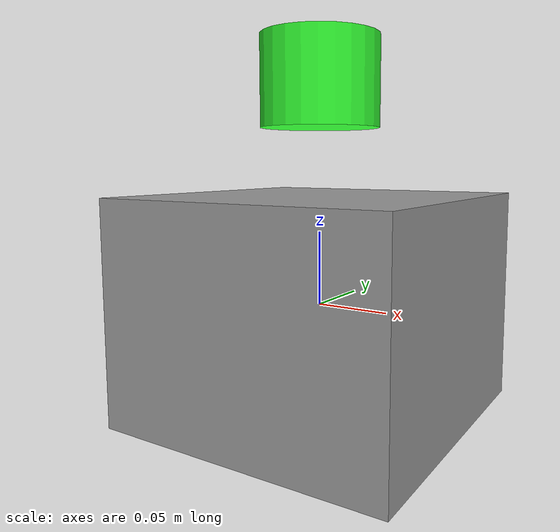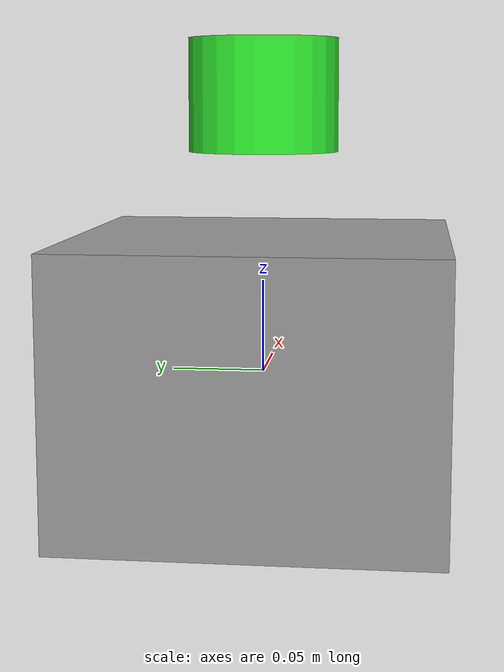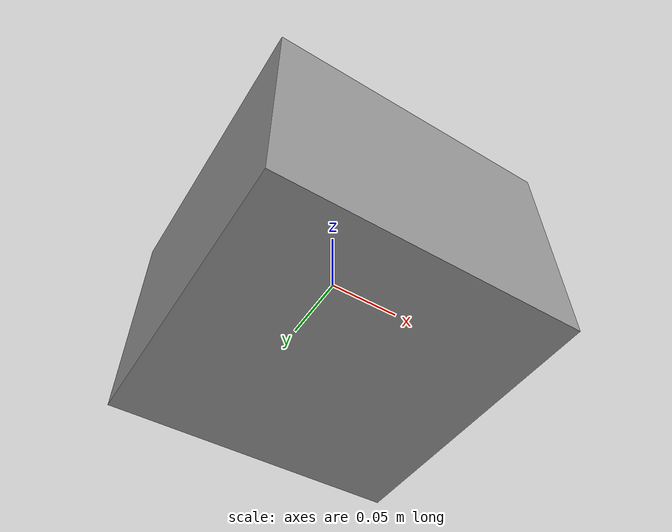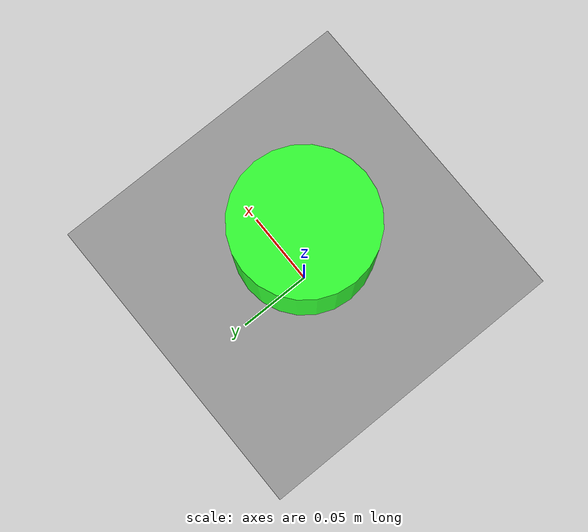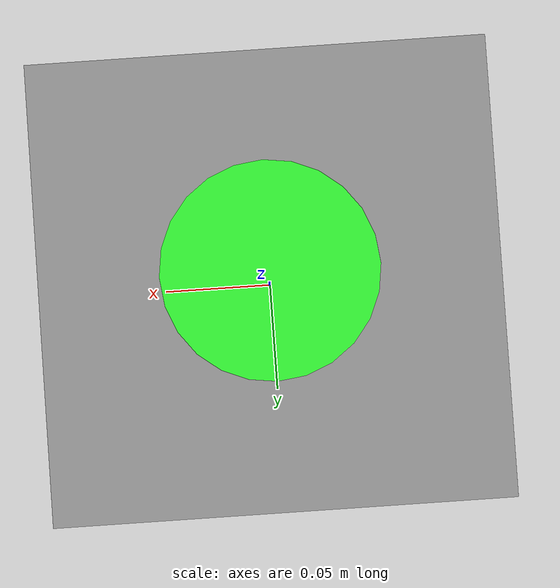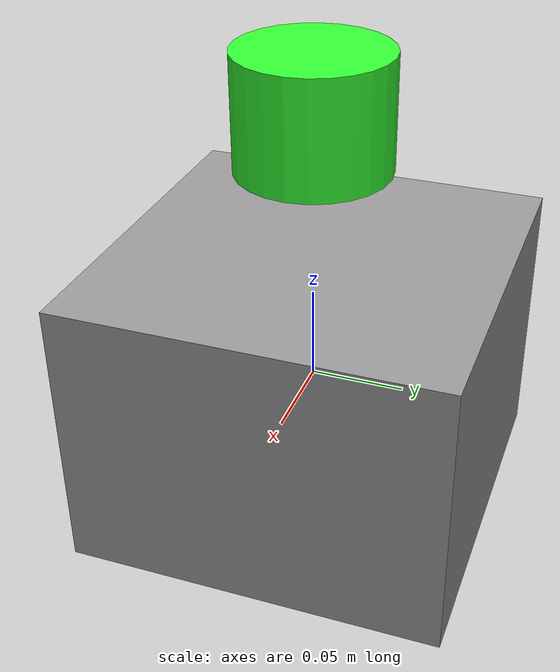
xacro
<?xml version="1.0"?>
<robot name="rover" xmlns:xacro="http://www.ros.org/wiki/xacro">

  <!-- Base link (simple box) -->
  <link name="base_link">
    <visual>
      <origin xyz="0 0 0" rpy="0 0 0"/>
      <geometry>
        <box size="0.2 0.2 0.15"/>
      </geometry>
      <material name="grey">
        <color rgba="0.6 0.6 0.6 1.0"/>
      </material>
    </visual>
  </link>

  <!-- IMU link: mounted with 180° yaw relative to base_link -->
  <link name="imu_link">
    <visual>
      <origin xyz="0 0 0.0" rpy="0 0 0"/>
      <geometry>
        <box size="0.02 0.02 0.02"/>
      </geometry>
      <material name="blue">
        <color rgba="0.2 0.4 1.0 1.0"/>
      </material>
    </visual>
  </link>

  <joint name="imu_mount" type="fixed">
    <!-- 180° about Z -->
    <origin xyz="0 0 0.05" rpy="0 0 3.14159"/>
    <parent link="base_link"/>
    <child link="imu_link"/>
  </joint>

  <!-- LiDAR link: 15cm above base -->
  <link name="lidar_link">
    <visual>
      <origin xyz="0 0 0" rpy="0 0 0"/>
      <geometry>
        <cylinder radius="0.04" length="0.06"/>
      </geometry>
      <material name="green">
        <color rgba="0.2 1.0 0.2 1.0"/>
      </material>
    </visual>
  </link>

  <joint name="lidar_mount" type="fixed">
    <origin xyz="0 0 0.15" rpy="0 0 0"/>
    <parent link="base_link"/>
    <child link="lidar_link"/>
  </joint>

</robot>
